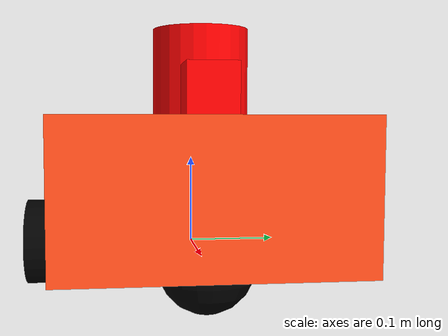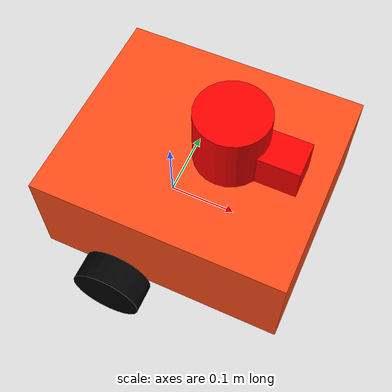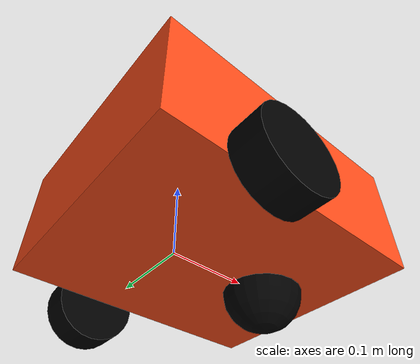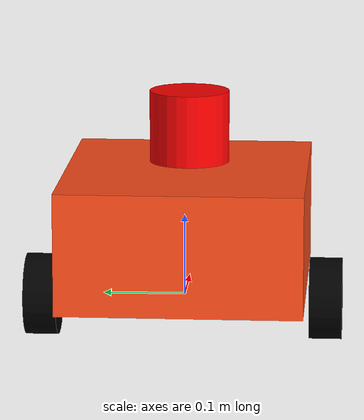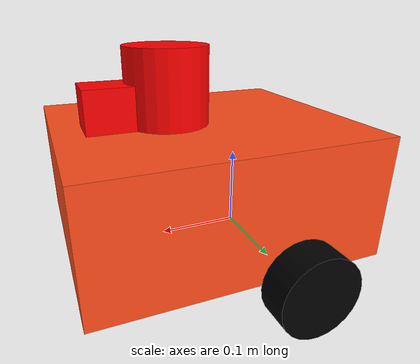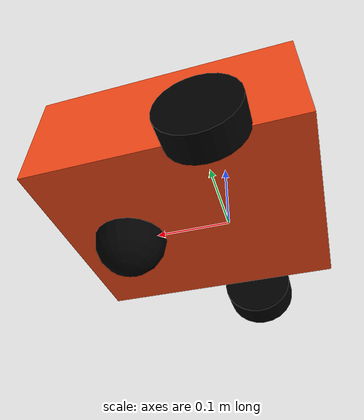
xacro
<?xml version='1.0'?>

<robot name="my_robot" xmlns:xacro="http://www.ros.org/wiki/xacro">

<gazebo reference="left_wheel">
    <material>Gazebo/Black</material>
</gazebo>

<gazebo reference="right_wheel">
    <material>Gazebo/Black</material>
</gazebo>

<gazebo reference="chassis">
    <material>Gazebo/Orange</material>
</gazebo>

<gazebo reference="caster_wheel">
    <material>Gazebo/Black</material>
    <mu1 value = "0.001"/>
    <mu2 value = "0.001"/>
</gazebo>

<gazebo reference="tower">
    <material>Gazebo/Red</material>
</gazebo>

<gazebo reference="holder">
    <material>Gazebo/Red</material>
</gazebo>

<gazebo reference="lidar">
    <material>Gazebo/Red</material>
</gazebo>

<gazebo reference="camera_link">
    <material>Gazebo/Red</material>
</gazebo>

  <xacro:include filename="$(find my_robot)/urdf/drive_controller.xacro" />
  <xacro:include filename="$(find my_robot)/urdf/robot_core.xacro" />
  <xacro:include filename="$(find my_robot)/urdf/lidar.xacro" />
  <xacro:include filename="$(find my_robot)/urdf/camera.xacro" />

</robot>

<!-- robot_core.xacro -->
<robot name="my_robot" xmlns:xacro="http://www.ros.org/wiki/xacro">

    <material name = "orange">
        <color rgba = "1 0.3 0.1 1"/>
    </material>
    <material name = "red">
        <color rgba = "1 0 0 1"/>
    </material>
    <material name = "black">
        <color rgba = "0 0 0 1"/>
    </material>

    <!--Base linkd-->
    <link name = "base_link">

    </link>

    <!--Chassis link-->
    <joint name = "chassis_joint" type = "fixed">
        <parent link= "base_link"/>
        <child link = "chassis"/>
        <origin xyz = "-0.1 0 0"/>
    </joint>

    <link name = "chassis">
        <visual>
            <material name = "orange"/>
            <origin xyz = "0.15 0 0.075"/>
            <geometry>
                <box size = "0.35 0.3 0.15"/>
            </geometry>
        </visual>
        <collision>
            <origin xyz = "0.15 0 0.075"/>
            <geometry>
                <box size = "0.35 0.3 0.15"/>
            </geometry>
        </collision>
        <inertial>
            <mass value="10"/>
            <geometry>
                <box size = "0.35 0.3 0.15"/>
            </geometry>
            <origin xyz = "0.15 0 0.075"/>
            <inertia
                ixx="0.1" ixy="0" ixz="0"
                iyy="0.1" iyz="0"
                izz="0.1"
            />
        </inertial>
    </link>

    <!--Left wheel link-->
    <joint name = "left_wheel_joint" type = "continuous">
        <parent link = "chassis"/>
        <child link = "left_wheel"/>
        <origin xyz = "0.09 0.175 0" rpy = "0 0 0 "/>
        <axis xyz = "0 1 0"/>
    </joint>

    <link name = "left_wheel">
        <visual>
            <material name = "black"/>
                <origin xyz = "0 0 0" rpy= "0 ${pi/2} ${pi/2}"/>
            <geometry>
                <cylinder radius = "0.05" length = "0.04"/>
            </geometry>
        </visual>
         <collision>
                <origin xyz = "0 0 0" rpy= "0 ${pi/2} ${pi/2}"/>
            <geometry>
                <cylinder radius = "0.05" length = "0.04"/>
            </geometry>
        </collision>
        <inertial>
            <mass value="5.0"/>
            <origin xyz = "0 0 0" rpy= "0 ${pi/2} ${pi/2}"/>
            <geometry>
		        <cylinder radius = "0.05" length = "0.04"/>
	        </geometry>
            <inertia
                ixx="0.1" ixy="0" ixz="0"
                iyy="0.1" iyz="0"
                izz="0.1"
            />
        </inertial>
    </link>

    <!--Right wheel link-->
    <joint name = "right_wheel_joint" type = "continuous">
        <parent link = "chassis"/>
        <child link = "right_wheel"/>
        <origin xyz = "0.09 -0.175 0" rpy = "0 0 0 "/>
        <axis xyz = "0 1 0"/>
    </joint>

    <link name = "right_wheel">
        <visual>
            <material name = "black"/>
            <origin xyz = "0 0 0" rpy= "0 ${pi/2} ${pi/2}"/>
            <geometry>
                <cylinder radius = "0.05" length = "0.04"/>
            </geometry>
        </visual>
        <collision>
            <origin xyz = "0 0 0" rpy= "0 ${pi/2} ${pi/2}"/>
            <geometry>
                <cylinder radius = "0.05" length = "0.04"/>
            </geometry>
        </collision>
        <inertial>
            <mass value="5.0"/>
            <origin xyz = "0 0 0" rpy= "0 ${pi/2} ${pi/2}"/>
            <geometry>
		        <cylinder radius = "0.05" length = "0.04"/>
	        </geometry>
            <inertia
                ixx="0.1" ixy="0" ixz="0"
                iyy="0.1" iyz="0"
                izz="0.1"
            />
        </inertial>
    </link>

    <!--Caster wheel link-->
    <joint name = "caster_wheel_joint" type = "fixed">
        <parent link= "chassis"/>
        <child link = "caster_wheel"/>
        <origin xyz = "0.24 0 0"/>
    </joint>

    <link name = "caster_wheel">
        <visual>
            <material name = "black"/>
            <geometry>
                <sphere radius = "0.05"/>
            </geometry>
        </visual>
        <collision>
            <geometry>
                <sphere radius = "0.05"/>
            </geometry>
        </collision>
        <inertial>
            <mass value="5.0"/>
            <origin xyz="0 0 0" rpy="0 0 0 "/>
            <geometry>
		        <sphere radius = "0.05"/>
	        </geometry>
            <inertia
                ixx="0.1" ixy="0" ixz="0"
                iyy="0.1" iyz="0"
                izz="0.1"
            />
        </inertial>
    </link>

    <!--Tower link-->
    <joint name = "tower_joint" type = "fixed">
        <parent link = "chassis"/>
        <child link = "tower"/>
        <origin xyz = "0.19 0.0 0.15"/>
    </joint>

    <link name = "tower">
        <visual>
            <material name = "red"/>
            <geometry>
                <cylinder radius = "0.05" length = "0.18"/>
            </geometry>
        </visual>
        <collision>
            <geometry>
                <cylinder radius = "0.05" length = "0.18"/>
            </geometry>
        </collision>
        <inertial>
            <mass value="0.1"/>
            <origin xyz="0 0 0" rpy="0 0 0"/>
            <geometry>
                <cylinder radius = "0.05" length = "0.18"/>
            </geometry>
            <inertia
                ixx="0.1" ixy="0" ixz="0"
                iyy="0.1" iyz="0"
                izz="0.1"
            />
        </inertial>
    </link>

    <!--Holder link-->
    <joint name = "holder_joint" type = "fixed">
        <parent link= "chassis"/>
        <child link = "holder"/>
        <origin xyz = "0.24 0 0.15"/>
    </joint>

    <link name = "holder">
        <visual>
            <material name = "red"/>
            <geometry>
                <box size = "0.1 0.05 0.1"/>
            </geometry>
        </visual>
        <collision>
            <geometry>
                <box size = "0.1 0.05 0.1"/>
            </geometry>
        </collision>
        <inertial>
            <mass value="0.1"/>
            <origin xyz="0 0 0" rpy="0 0 0"/>
            <geometry>
                <box size = "0.1 0.05 0.1"/>
            </geometry>
            <inertia
                ixx="0.1" ixy="0" ixz="0"
                iyy="0.1" iyz="0"
                izz="0.1"
            />
        </inertial>
    </link>
</robot>

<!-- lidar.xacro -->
<robot name="my_robot" xmlns:xacro="http://www.ros.org/wiki/xacro">

    <joint name="lidar_joint" type="fixed">
        <origin xyz="0 0 0.01" rpy="0 0 0"/>
        <axis xyz="0 1 0"/>
        <parent link="tower"/>
        <child link="lidar"/>
    </joint>

    <link name = "lidar">
        <visual>
            <geometry>
                <cylinder radius = "0.03" length = "0.05"/>
            </geometry>
        </visual>
        <collision>
            <geometry>
                <cylinder radius = "0.03" length = "0.05"/>
            </geometry>
        </collision>
        <inertial>
            <mass value="1"/>
            <origin xyz="0 0 0" rpy="0 0 0"/>
            <geometry>
                <cylinder radius = "0.03" length = "0.05"/>
            </geometry>
            <inertia
                ixx="0.1" ixy="0" ixz="0"
                iyy="0.1" iyz="0"
                izz="0.1"
            />
        </inertial>
    </link>

    <gazebo reference = "lidar">
        <sensor name = "laser" type = "ray">
            <pose>0 0 0 0 0 0</pose>
            <visualize>false</visualize>
            <update_rate>12</update_rate>
            <ray>
                <scan>
                    <horizontal>
                        <samples>540</samples>
                        <resolution>1</resolution>
                        <min_angle>-3.14</min_angle>
                        <max_angle>3.14</max_angle>
                    </horizontal>
                </scan>
                <range>
                    <min>0.3</min>
                    <max>12</max>
                    <resolution>0.01</resolution>
                </range>
            </ray>
            <plugin name="laser_controller" filename="libgazebo_ros_laser.so">
                <topicName>/scan</topicName>
                <frameName>lidar</frameName>
            </plugin>
        </sensor>
    </gazebo>

</robot>

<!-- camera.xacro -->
<robot name="my_robot" xmlns:xacro="http://www.ros.org/wiki/xacro">

    <joint name="camera_joint" type="fixed">
        <origin xyz="0 0 0" rpy="0 0 0"/>
        <parent link="holder"/>
        <child link="camera_link"/>
    </joint>

    <link name = "camera_link">
        <visual>
            <geometry>
                <box size = "0.1 0.05 0.1"/>
            </geometry>
        </visual>
    </link>

    <joint name="camera_optical_joint" type="fixed">
        <origin xyz="0 0 0" rpy="${-pi/2} 0 ${-pi/2}"/>
        <parent link="camera_link"/>
        <child link="camera_optical_link"/>
    </joint>

     <link name = "camera_optical_link">
    </link>

    <gazebo reference = "camera_link">
        <sensor name = "camera" type = "camera">
            <pose>0 0 0 0 0 0</pose>
            <visualize>true</visualize>
            <update_rate>10</update_rate>
            <camera>
                <horizontal_fov>1.089</horizontal_fov>
                <image>
                    <format>R8G8B8</format>
                    <width>640</width>
                    <height>480</height>
                </image>
                <clip>
                    <near>0.05</near>
                    <far>8.0</far>
                </clip>
            </camera>
            <plugin name = "camera_controller" filename = "libgazebo_ros_camera.so">
                <frame_name>camera_optical_link</frame_name>
            </plugin>
        </sensor>
    </gazebo>

</robot>
